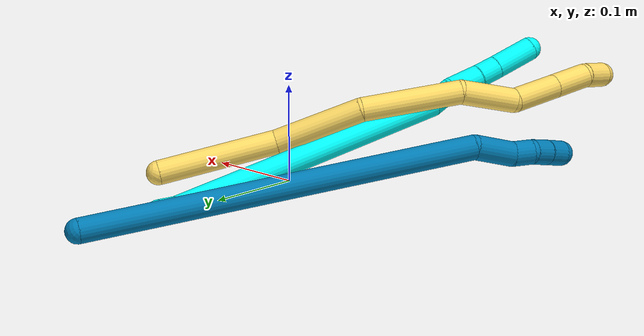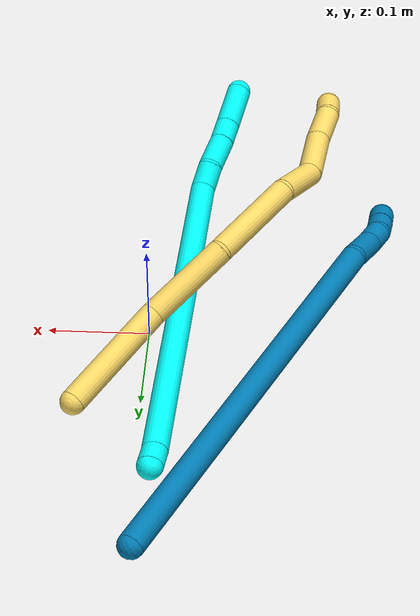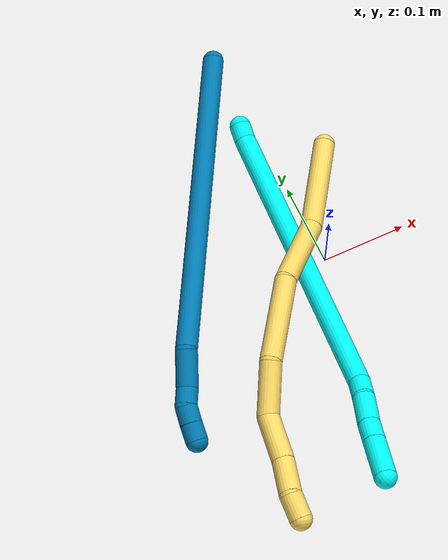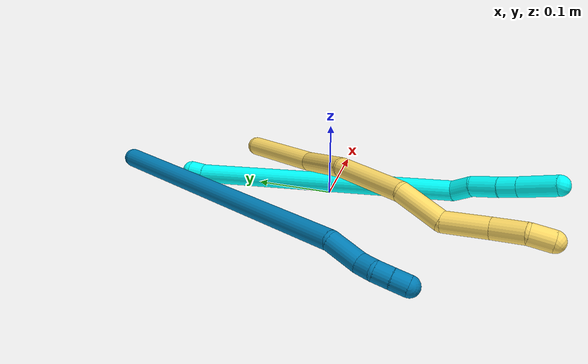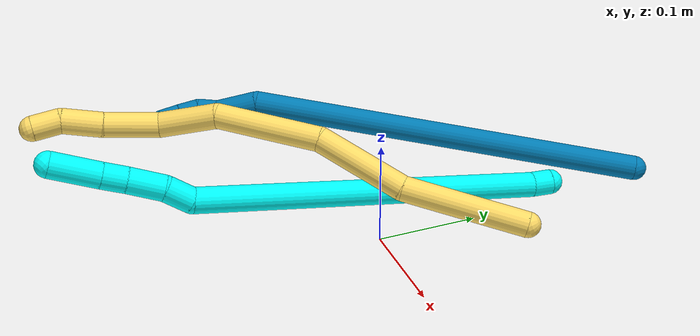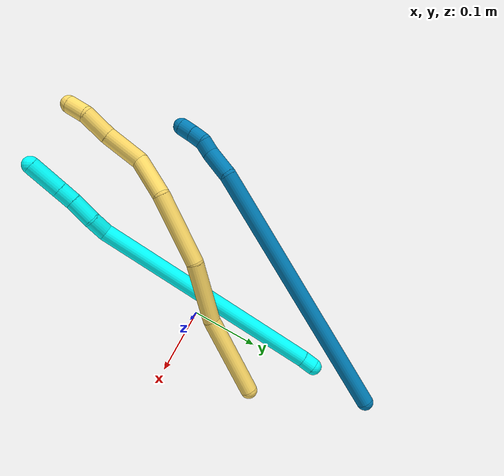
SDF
<sdf version="1.7">
 <world name="default">
  <model name="3">
   <static>0</static>
   <link name="3">
    <collision name="collision-cylinder-e_1_1_4">
     <pose>-0.002943 -0.005253 -0.008058 2.56393 -0.296863 -0.932469</pose>
     <geometry><cylinder><radius>0.0125</radius><length>0.020118</length></cylinder></geometry>
     <surface>
      <friction><ode><mu>1.16</mu><mu2>1.16</mu2><slip1>0</slip1><slip2>0</slip2></ode></friction>
      <contact><ode><kp>1e+06</kp><kd>1</kd><max_vel>0</max_vel><min_depth>0.001</min_depth></ode></contact>
     </surface>
    </collision>
    <visual name="visual-cylinder-e_1_1_4">
     <pose>-0.002943 -0.005253 -0.008058 2.56393 -0.296863 -0.932469</pose>
     <geometry><cylinder><radius>0.0125</radius><length>0.020118</length></cylinder></geometry>
     <material><ambient>0.003922 1 0.996078 1</ambient></material>
    </visual>
    <collision name="collision-cylinder-e_2_4_5">
     <pose>-0.035007 -0.118541 -0.14848 2.45705 -0.168824 -0.466321</pose>
     <geometry><cylinder><radius>0.0125</radius><length>0.34664</length></cylinder></geometry>
     <surface>
      <friction><ode><mu>1.16</mu><mu2>1.16</mu2><slip1>0</slip1><slip2>0</slip2></ode></friction>
      <contact><ode><kp>1e+06</kp><kd>1</kd><max_vel>0</max_vel><min_depth>0.001</min_depth></ode></contact>
     </surface>
    </collision>
    <visual name="visual-cylinder-e_2_4_5">
     <pose>-0.035007 -0.118541 -0.14848 2.45705 -0.168824 -0.466321</pose>
     <geometry><cylinder><radius>0.0125</radius><length>0.34664</length></cylinder></geometry>
     <material><ambient>0.003922 1 0.996078 1</ambient></material>
    </visual>
    <collision name="collision-cylinder-e_3_5_6">
     <pose>-0.06582 -0.238932 -0.286317 1.98786 -0.124471 -0.190954</pose>
     <geometry><cylinder><radius>0.0125</radius><length>0.027238</length></cylinder></geometry>
     <surface>
      <friction><ode><mu>1.16</mu><mu2>1.16</mu2><slip1>0</slip1><slip2>0</slip2></ode></friction>
      <contact><ode><kp>1e+06</kp><kd>1</kd><max_vel>0</max_vel><min_depth>0.001</min_depth></ode></contact>
     </surface>
    </collision>
    <visual name="visual-cylinder-e_3_5_6">
     <pose>-0.06582 -0.238932 -0.286317 1.98786 -0.124471 -0.190954</pose>
     <geometry><cylinder><radius>0.0125</radius><length>0.027238</length></cylinder></geometry>
     <material><ambient>0.003922 1 0.996078 1</ambient></material>
    </visual>
    <collision name="collision-cylinder-e_4_6_7">
     <pose>-0.072473 -0.264946 -0.301547 2.19103 -0.287503 -0.548372</pose>
     <geometry><cylinder><radius>0.0125</radius><length>0.035006</length></cylinder></geometry>
     <surface>
      <friction><ode><mu>1.16</mu><mu2>1.16</mu2><slip1>0</slip1><slip2>0</slip2></ode></friction>
      <contact><ode><kp>1e+06</kp><kd>1</kd><max_vel>0</max_vel><min_depth>0.001</min_depth></ode></contact>
     </surface>
    </collision>
    <visual name="visual-cylinder-e_4_6_7">
     <pose>-0.072473 -0.264946 -0.301547 2.19103 -0.287503 -0.548372</pose>
     <geometry><cylinder><radius>0.0125</radius><length>0.035006</length></cylinder></geometry>
     <material><ambient>0.003922 1 0.996078 1</ambient></material>
    </visual>
    <collision name="collision-cylinder-e_5_7_8">
     <pose>-0.079938 -0.287594 -0.318296 2.23191 -0.216197 -0.436741</pose>
     <geometry><cylinder><radius>0.0125</radius><length>0.023322</length></cylinder></geometry>
     <surface>
      <friction><ode><mu>1.16</mu><mu2>1.16</mu2><slip1>0</slip1><slip2>0</slip2></ode></friction>
      <contact><ode><kp>1e+06</kp><kd>1</kd><max_vel>0</max_vel><min_depth>0.001</min_depth></ode></contact>
     </surface>
    </collision>
    <visual name="visual-cylinder-e_5_7_8">
     <pose>-0.079938 -0.287594 -0.318296 2.23191 -0.216197 -0.436741</pose>
     <geometry><cylinder><radius>0.0125</radius><length>0.023322</length></cylinder></geometry>
     <material><ambient>0.003922 1 0.996078 1</ambient></material>
    </visual>
    <collision name="collision-cylinder-e_6_8_2">
     <pose>-0.087253 -0.315346 -0.339184 2.20823 -0.203319 -0.399569</pose>
     <geometry><cylinder><radius>0.0125</radius><length>0.047676</length></cylinder></geometry>
     <surface>
      <friction><ode><mu>1.16</mu><mu2>1.16</mu2><slip1>0</slip1><slip2>0</slip2></ode></friction>
      <contact><ode><kp>1e+06</kp><kd>1</kd><max_vel>0</max_vel><min_depth>0.001</min_depth></ode></contact>
     </surface>
    </collision>
    <visual name="visual-cylinder-e_6_8_2">
     <pose>-0.087253 -0.315346 -0.339184 2.20823 -0.203319 -0.399569</pose>
     <geometry><cylinder><radius>0.0125</radius><length>0.047676</length></cylinder></geometry>
     <material><ambient>0.003922 1 0.996078 1</ambient></material>
    </visual>
    <collision name="collision-sphere-2">
     <pose>-0.092066 -0.334108 -0.353078 0 -0 0</pose>
     <geometry><sphere><radius>0.0125</radius></sphere></geometry>
     <surface>
      <friction><ode><mu>1.16</mu><mu2>1.16</mu2><slip1>0</slip1><slip2>0</slip2></ode></friction>
      <contact><ode><kp>1e+06</kp><kd>1</kd><max_vel>0</max_vel><min_depth>0.001</min_depth></ode></contact>
     </surface>
    </collision>
    <visual name="visual-sphere-2">
     <pose>-0.092066 -0.334108 -0.353078 0 -0 0</pose>
     <geometry><sphere><radius>0.0125</radius></sphere></geometry>
     <material><ambient>0.003922 1 0.996078 1</ambient></material>
    </visual>
    <collision name="collision-sphere-4">
     <pose>-0.005885 -0.010505 -0.016117 0 -0 0</pose>
     <geometry><sphere><radius>0.0125</radius></sphere></geometry>
     <surface>
      <friction><ode><mu>1.16</mu><mu2>1.16</mu2><slip1>0</slip1><slip2>0</slip2></ode></friction>
      <contact><ode><kp>1e+06</kp><kd>1</kd><max_vel>0</max_vel><min_depth>0.001</min_depth></ode></contact>
     </surface>
    </collision>
    <visual name="visual-sphere-4">
     <pose>-0.005885 -0.010505 -0.016117 0 -0 0</pose>
     <geometry><sphere><radius>0.0125</radius></sphere></geometry>
     <material><ambient>0.003922 1 0.996078 1</ambient></material>
    </visual>
    <collision name="collision-sphere-1">
     <geometry><sphere><radius>0.0125</radius></sphere></geometry>
     <surface>
      <friction><ode><mu>1.16</mu><mu2>1.16</mu2><slip1>0</slip1><slip2>0</slip2></ode></friction>
      <contact><ode><kp>1e+06</kp><kd>1</kd><max_vel>0</max_vel><min_depth>0.001</min_depth></ode></contact>
     </surface>
    </collision>
    <visual name="visual-sphere-1">
     <geometry><sphere><radius>0.0125</radius></sphere></geometry>
     <material><ambient>0.003922 1 0.996078 1</ambient></material>
    </visual>
    <collision name="collision-sphere-8">
     <pose>-0.082439 -0.296584 -0.325289 0 -0 0</pose>
     <geometry><sphere><radius>0.0125</radius></sphere></geometry>
     <surface>
      <friction><ode><mu>1.16</mu><mu2>1.16</mu2><slip1>0</slip1><slip2>0</slip2></ode></friction>
      <contact><ode><kp>1e+06</kp><kd>1</kd><max_vel>0</max_vel><min_depth>0.001</min_depth></ode></contact>
     </surface>
    </collision>
    <visual name="visual-sphere-8">
     <pose>-0.082439 -0.296584 -0.325289 0 -0 0</pose>
     <geometry><sphere><radius>0.0125</radius></sphere></geometry>
     <material><ambient>0.003922 1 0.996078 1</ambient></material>
    </visual>
    <collision name="collision-sphere-5">
     <pose>-0.064129 -0.226577 -0.280843 0 -0 0</pose>
     <geometry><sphere><radius>0.0125</radius></sphere></geometry>
     <surface>
      <friction><ode><mu>1.16</mu><mu2>1.16</mu2><slip1>0</slip1><slip2>0</slip2></ode></friction>
      <contact><ode><kp>1e+06</kp><kd>1</kd><max_vel>0</max_vel><min_depth>0.001</min_depth></ode></contact>
     </surface>
    </collision>
    <visual name="visual-sphere-5">
     <pose>-0.064129 -0.226577 -0.280843 0 -0 0</pose>
     <geometry><sphere><radius>0.0125</radius></sphere></geometry>
     <material><ambient>0.003922 1 0.996078 1</ambient></material>
    </visual>
    <collision name="collision-sphere-6">
     <pose>-0.06751 -0.251287 -0.291791 0 -0 0</pose>
     <geometry><sphere><radius>0.0125</radius></sphere></geometry>
     <surface>
      <friction><ode><mu>1.16</mu><mu2>1.16</mu2><slip1>0</slip1><slip2>0</slip2></ode></friction>
      <contact><ode><kp>1e+06</kp><kd>1</kd><max_vel>0</max_vel><min_depth>0.001</min_depth></ode></contact>
     </surface>
    </collision>
    <visual name="visual-sphere-6">
     <pose>-0.06751 -0.251287 -0.291791 0 -0 0</pose>
     <geometry><sphere><radius>0.0125</radius></sphere></geometry>
     <material><ambient>0.003922 1 0.996078 1</ambient></material>
    </visual>
    <collision name="collision-sphere-7">
     <pose>-0.077436 -0.278604 -0.311302 0 -0 0</pose>
     <geometry><sphere><radius>0.0125</radius></sphere></geometry>
     <surface>
      <friction><ode><mu>1.16</mu><mu2>1.16</mu2><slip1>0</slip1><slip2>0</slip2></ode></friction>
      <contact><ode><kp>1e+06</kp><kd>1</kd><max_vel>0</max_vel><min_depth>0.001</min_depth></ode></contact>
     </surface>
    </collision>
    <visual name="visual-sphere-7">
     <pose>-0.077436 -0.278604 -0.311302 0 -0 0</pose>
     <geometry><sphere><radius>0.0125</radius></sphere></geometry>
     <material><ambient>0.003922 1 0.996078 1</ambient></material>
    </visual>
    <inertial>
     <pose>-0.045096 -0.157442 -0.18716 0 -0 0</pose>
     <mass>0.5</mass>
     <inertia>
      <ixx>0.001527</ixx>
      <ixy>0</ixy>
      <ixz>0</ixz>
      <iyy>-0.003834</iyy>
      <iyz>0</iyz>
      <izz>0.002752</izz>
     </inertia>
    </inertial>
   </link>
   <pose>-0.017079 0.194224 0.011927 -1.12344 -0.469654 0.190009</pose>
  </model>
  <model name="5">
   <static>0</static>
   <link name="5">
    <collision name="collision-cylinder-e_1_1_4">
     <pose>-0.011305 -0.034766 0.048992 0.617166 -0.186009 -0.059447</pose>
     <geometry><cylinder><radius>0.0125</radius><length>0.122257</length></cylinder></geometry>
     <surface>
      <friction><ode><mu>1.16</mu><mu2>1.16</mu2><slip1>0</slip1><slip2>0</slip2></ode></friction>
      <contact><ode><kp>1e+06</kp><kd>1</kd><max_vel>0</max_vel><min_depth>0.001</min_depth></ode></contact>
     </surface>
    </collision>
    <visual name="visual-cylinder-e_1_1_4">
     <pose>-0.011305 -0.034766 0.048992 0.617166 -0.186009 -0.059447</pose>
     <geometry><cylinder><radius>0.0125</radius><length>0.122257</length></cylinder></geometry>
     <material><ambient>1 0.858824 0.4 1</ambient></material>
    </visual>
    <collision name="collision-cylinder-e_2_4_5">
     <pose>-0.027818 -0.104745 0.127252 0.877313 -0.113263 -0.05318</pose>
     <geometry><cylinder><radius>0.0125</radius><length>0.092167</length></cylinder></geometry>
     <surface>
      <friction><ode><mu>1.16</mu><mu2>1.16</mu2><slip1>0</slip1><slip2>0</slip2></ode></friction>
      <contact><ode><kp>1e+06</kp><kd>1</kd><max_vel>0</max_vel><min_depth>0.001</min_depth></ode></contact>
     </surface>
    </collision>
    <visual name="visual-cylinder-e_2_4_5">
     <pose>-0.027818 -0.104745 0.127252 0.877313 -0.113263 -0.05318</pose>
     <geometry><cylinder><radius>0.0125</radius><length>0.092167</length></cylinder></geometry>
     <material><ambient>1 0.858824 0.4 1</ambient></material>
    </visual>
    <collision name="collision-cylinder-e_3_5_6">
     <pose>-0.039547 -0.167563 0.199791 0.567885 -0.126369 -0.036923</pose>
     <geometry><cylinder><radius>0.0125</radius><length>0.103477</length></cylinder></geometry>
     <surface>
      <friction><ode><mu>1.16</mu><mu2>1.16</mu2><slip1>0</slip1><slip2>0</slip2></ode></friction>
      <contact><ode><kp>1e+06</kp><kd>1</kd><max_vel>0</max_vel><min_depth>0.001</min_depth></ode></contact>
     </surface>
    </collision>
    <visual name="visual-cylinder-e_3_5_6">
     <pose>-0.039547 -0.167563 0.199791 0.567885 -0.126369 -0.036923</pose>
     <geometry><cylinder><radius>0.0125</radius><length>0.103477</length></cylinder></geometry>
     <material><ambient>1 0.858824 0.4 1</ambient></material>
    </visual>
    <collision name="collision-cylinder-e_4_6_7">
     <pose>-0.046279 -0.201408 0.27229 0.210317 -0.007059 -0.000745</pose>
     <geometry><cylinder><radius>0.0125</radius><length>0.059777</length></cylinder></geometry>
     <surface>
      <friction><ode><mu>1.16</mu><mu2>1.16</mu2><slip1>0</slip1><slip2>0</slip2></ode></friction>
      <contact><ode><kp>1e+06</kp><kd>1</kd><max_vel>0</max_vel><min_depth>0.001</min_depth></ode></contact>
     </surface>
    </collision>
    <visual name="visual-cylinder-e_4_6_7">
     <pose>-0.046279 -0.201408 0.27229 0.210317 -0.007059 -0.000745</pose>
     <geometry><cylinder><radius>0.0125</radius><length>0.059777</length></cylinder></geometry>
     <material><ambient>1 0.858824 0.4 1</ambient></material>
    </visual>
    <collision name="collision-cylinder-e_5_7_8">
     <pose>-0.059388 -0.214279 0.324686 0.278757 -0.491419 -0.070333</pose>
     <geometry><cylinder><radius>0.0125</radius><length>0.054664</length></cylinder></geometry>
     <surface>
      <friction><ode><mu>1.16</mu><mu2>1.16</mu2><slip1>0</slip1><slip2>0</slip2></ode></friction>
      <contact><ode><kp>1e+06</kp><kd>1</kd><max_vel>0</max_vel><min_depth>0.001</min_depth></ode></contact>
     </surface>
    </collision>
    <visual name="visual-cylinder-e_5_7_8">
     <pose>-0.059388 -0.214279 0.324686 0.278757 -0.491419 -0.070333</pose>
     <geometry><cylinder><radius>0.0125</radius><length>0.054664</length></cylinder></geometry>
     <material><ambient>1 0.858824 0.4 1</ambient></material>
    </visual>
    <collision name="collision-cylinder-e_6_8_9">
     <pose>-0.080701 -0.227865 0.364566 0.394385 -0.435179 -0.088285</pose>
     <geometry><cylinder><radius>0.0125</radius><length>0.039926</length></cylinder></geometry>
     <surface>
      <friction><ode><mu>1.16</mu><mu2>1.16</mu2><slip1>0</slip1><slip2>0</slip2></ode></friction>
      <contact><ode><kp>1e+06</kp><kd>1</kd><max_vel>0</max_vel><min_depth>0.001</min_depth></ode></contact>
     </surface>
    </collision>
    <visual name="visual-cylinder-e_6_8_9">
     <pose>-0.080701 -0.227865 0.364566 0.394385 -0.435179 -0.088285</pose>
     <geometry><cylinder><radius>0.0125</radius><length>0.039926</length></cylinder></geometry>
     <material><ambient>1 0.858824 0.4 1</ambient></material>
    </visual>
    <collision name="collision-cylinder-e_7_9_2">
     <pose>-0.094535 -0.234661 0.394042 -0.012503 -0.40144 0.002544</pose>
     <geometry><cylinder><radius>0.0125</radius><length>0.027732</length></cylinder></geometry>
     <surface>
      <friction><ode><mu>1.16</mu><mu2>1.16</mu2><slip1>0</slip1><slip2>0</slip2></ode></friction>
      <contact><ode><kp>1e+06</kp><kd>1</kd><max_vel>0</max_vel><min_depth>0.001</min_depth></ode></contact>
     </surface>
    </collision>
    <visual name="visual-cylinder-e_7_9_2">
     <pose>-0.094535 -0.234661 0.394042 -0.012503 -0.40144 0.002544</pose>
     <geometry><cylinder><radius>0.0125</radius><length>0.027732</length></cylinder></geometry>
     <material><ambient>1 0.858824 0.4 1</ambient></material>
    </visual>
    <collision name="collision-sphere-2">
     <pose>-0.099953 -0.234502 0.406804 0 -0 0</pose>
     <geometry><sphere><radius>0.0125</radius></sphere></geometry>
     <surface>
      <friction><ode><mu>1.16</mu><mu2>1.16</mu2><slip1>0</slip1><slip2>0</slip2></ode></friction>
      <contact><ode><kp>1e+06</kp><kd>1</kd><max_vel>0</max_vel><min_depth>0.001</min_depth></ode></contact>
     </surface>
    </collision>
    <visual name="visual-sphere-2">
     <pose>-0.099953 -0.234502 0.406804 0 -0 0</pose>
     <geometry><sphere><radius>0.0125</radius></sphere></geometry>
     <material><ambient>1 0.858824 0.4 1</ambient></material>
    </visual>
    <collision name="collision-sphere-9">
     <pose>-0.089117 -0.234821 0.381279 0 -0 0</pose>
     <geometry><sphere><radius>0.0125</radius></sphere></geometry>
     <surface>
      <friction><ode><mu>1.16</mu><mu2>1.16</mu2><slip1>0</slip1><slip2>0</slip2></ode></friction>
      <contact><ode><kp>1e+06</kp><kd>1</kd><max_vel>0</max_vel><min_depth>0.001</min_depth></ode></contact>
     </surface>
    </collision>
    <visual name="visual-sphere-9">
     <pose>-0.089117 -0.234821 0.381279 0 -0 0</pose>
     <geometry><sphere><radius>0.0125</radius></sphere></geometry>
     <material><ambient>1 0.858824 0.4 1</ambient></material>
    </visual>
    <collision name="collision-sphere-4">
     <pose>-0.02261 -0.069533 0.097983 0 -0 0</pose>
     <geometry><sphere><radius>0.0125</radius></sphere></geometry>
     <surface>
      <friction><ode><mu>1.16</mu><mu2>1.16</mu2><slip1>0</slip1><slip2>0</slip2></ode></friction>
      <contact><ode><kp>1e+06</kp><kd>1</kd><max_vel>0</max_vel><min_depth>0.001</min_depth></ode></contact>
     </surface>
    </collision>
    <visual name="visual-sphere-4">
     <pose>-0.02261 -0.069533 0.097983 0 -0 0</pose>
     <geometry><sphere><radius>0.0125</radius></sphere></geometry>
     <material><ambient>1 0.858824 0.4 1</ambient></material>
    </visual>
    <collision name="collision-sphere-1">
     <geometry><sphere><radius>0.0125</radius></sphere></geometry>
     <surface>
      <friction><ode><mu>1.16</mu><mu2>1.16</mu2><slip1>0</slip1><slip2>0</slip2></ode></friction>
      <contact><ode><kp>1e+06</kp><kd>1</kd><max_vel>0</max_vel><min_depth>0.001</min_depth></ode></contact>
     </surface>
    </collision>
    <visual name="visual-sphere-1">
     <geometry><sphere><radius>0.0125</radius></sphere></geometry>
     <material><ambient>1 0.858824 0.4 1</ambient></material>
    </visual>
    <collision name="collision-sphere-8">
     <pose>-0.072285 -0.220909 0.347854 0 -0 0</pose>
     <geometry><sphere><radius>0.0125</radius></sphere></geometry>
     <surface>
      <friction><ode><mu>1.16</mu><mu2>1.16</mu2><slip1>0</slip1><slip2>0</slip2></ode></friction>
      <contact><ode><kp>1e+06</kp><kd>1</kd><max_vel>0</max_vel><min_depth>0.001</min_depth></ode></contact>
     </surface>
    </collision>
    <visual name="visual-sphere-8">
     <pose>-0.072285 -0.220909 0.347854 0 -0 0</pose>
     <geometry><sphere><radius>0.0125</radius></sphere></geometry>
     <material><ambient>1 0.858824 0.4 1</ambient></material>
    </visual>
    <collision name="collision-sphere-5">
     <pose>-0.033027 -0.139957 0.156521 0 -0 0</pose>
     <geometry><sphere><radius>0.0125</radius></sphere></geometry>
     <surface>
      <friction><ode><mu>1.16</mu><mu2>1.16</mu2><slip1>0</slip1><slip2>0</slip2></ode></friction>
      <contact><ode><kp>1e+06</kp><kd>1</kd><max_vel>0</max_vel><min_depth>0.001</min_depth></ode></contact>
     </surface>
    </collision>
    <visual name="visual-sphere-5">
     <pose>-0.033027 -0.139957 0.156521 0 -0 0</pose>
     <geometry><sphere><radius>0.0125</radius></sphere></geometry>
     <material><ambient>1 0.858824 0.4 1</ambient></material>
    </visual>
    <collision name="collision-sphere-6">
     <pose>-0.046068 -0.195169 0.243061 0 -0 0</pose>
     <geometry><sphere><radius>0.0125</radius></sphere></geometry>
     <surface>
      <friction><ode><mu>1.16</mu><mu2>1.16</mu2><slip1>0</slip1><slip2>0</slip2></ode></friction>
      <contact><ode><kp>1e+06</kp><kd>1</kd><max_vel>0</max_vel><min_depth>0.001</min_depth></ode></contact>
     </surface>
    </collision>
    <visual name="visual-sphere-6">
     <pose>-0.046068 -0.195169 0.243061 0 -0 0</pose>
     <geometry><sphere><radius>0.0125</radius></sphere></geometry>
     <material><ambient>1 0.858824 0.4 1</ambient></material>
    </visual>
    <collision name="collision-sphere-7">
     <pose>-0.04649 -0.207648 0.301519 0 -0 0</pose>
     <geometry><sphere><radius>0.0125</radius></sphere></geometry>
     <surface>
      <friction><ode><mu>1.16</mu><mu2>1.16</mu2><slip1>0</slip1><slip2>0</slip2></ode></friction>
      <contact><ode><kp>1e+06</kp><kd>1</kd><max_vel>0</max_vel><min_depth>0.001</min_depth></ode></contact>
     </surface>
    </collision>
    <visual name="visual-sphere-7">
     <pose>-0.04649 -0.207648 0.301519 0 -0 0</pose>
     <geometry><sphere><radius>0.0125</radius></sphere></geometry>
     <material><ambient>1 0.858824 0.4 1</ambient></material>
    </visual>
    <inertial>
     <pose>-0.03979 -0.141203 0.195801 0 -0 0</pose>
     <mass>0.5</mass>
     <inertia>
      <ixx>0.000335</ixx>
      <ixy>0</ixy>
      <ixz>0</ixz>
      <iyy>0.000263</iyy>
      <iyz>0</iyz>
      <izz>0.000296</izz>
     </inertia>
    </inertial>
   </link>
   <pose>0.059518 0.125428 0.022581 -2.07185 0.633145 2.47034</pose>
  </model>
  <model name="9">
   <static>0</static>
   <link name="9">
    <collision name="collision-cylinder-e_1_1_4">
     <pose>-0.140932 -0.089847 0.106564 0.700494 -0.790915 -0.302663</pose>
     <geometry><cylinder><radius>0.0125</radius><length>0.396436</length></cylinder></geometry>
     <surface>
      <friction><ode><mu>1.16</mu><mu2>1.16</mu2><slip1>0</slip1><slip2>0</slip2></ode></friction>
      <contact><ode><kp>1e+06</kp><kd>1</kd><max_vel>0</max_vel><min_depth>0.001</min_depth></ode></contact>
     </surface>
    </collision>
    <visual name="visual-cylinder-e_1_1_4">
     <pose>-0.140932 -0.089847 0.106564 0.700494 -0.790915 -0.302663</pose>
     <geometry><cylinder><radius>0.0125</radius><length>0.396436</length></cylinder></geometry>
     <material><ambient>0 0.490196 0.709804 1</ambient></material>
    </visual>
    <collision name="collision-cylinder-e_2_4_5">
     <pose>-0.301662 -0.186317 0.218023 0.934273 -1.17659 -0.649122</pose>
     <geometry><cylinder><radius>0.0125</radius><length>0.042883</length></cylinder></geometry>
     <surface>
      <friction><ode><mu>1.16</mu><mu2>1.16</mu2><slip1>0</slip1><slip2>0</slip2></ode></friction>
      <contact><ode><kp>1e+06</kp><kd>1</kd><max_vel>0</max_vel><min_depth>0.001</min_depth></ode></contact>
     </surface>
    </collision>
    <visual name="visual-cylinder-e_2_4_5">
     <pose>-0.301662 -0.186317 0.218023 0.934273 -1.17659 -0.649122</pose>
     <geometry><cylinder><radius>0.0125</radius><length>0.042883</length></cylinder></geometry>
     <material><ambient>0 0.490196 0.709804 1</ambient></material>
    </visual>
    <collision name="collision-cylinder-e_3_5_6">
     <pose>-0.329466 -0.197204 0.227787 0.719271 -0.891003 -0.355296</pose>
     <geometry><cylinder><radius>0.0125</radius><length>0.020591</length></cylinder></geometry>
     <surface>
      <friction><ode><mu>1.16</mu><mu2>1.16</mu2><slip1>0</slip1><slip2>0</slip2></ode></friction>
      <contact><ode><kp>1e+06</kp><kd>1</kd><max_vel>0</max_vel><min_depth>0.001</min_depth></ode></contact>
     </surface>
    </collision>
    <visual name="visual-cylinder-e_3_5_6">
     <pose>-0.329466 -0.197204 0.227787 0.719271 -0.891003 -0.355296</pose>
     <geometry><cylinder><radius>0.0125</radius><length>0.020591</length></cylinder></geometry>
     <material><ambient>0 0.490196 0.709804 1</ambient></material>
    </visual>
    <collision name="collision-cylinder-e_4_6_7">
     <pose>-0.345948 -0.20671 0.23359 1.39442 -1.00985 -0.867082</pose>
     <geometry><cylinder><radius>0.0125</radius><length>0.02002</length></cylinder></geometry>
     <surface>
      <friction><ode><mu>1.16</mu><mu2>1.16</mu2><slip1>0</slip1><slip2>0</slip2></ode></friction>
      <contact><ode><kp>1e+06</kp><kd>1</kd><max_vel>0</max_vel><min_depth>0.001</min_depth></ode></contact>
     </surface>
    </collision>
    <visual name="visual-cylinder-e_4_6_7">
     <pose>-0.345948 -0.20671 0.23359 1.39442 -1.00985 -0.867082</pose>
     <geometry><cylinder><radius>0.0125</radius><length>0.02002</length></cylinder></geometry>
     <material><ambient>0 0.490196 0.709804 1</ambient></material>
    </visual>
    <collision name="collision-cylinder-e_5_7_2">
     <pose>-0.362922 -0.217274 0.234951 1.4907 -1.0099 -0.943484</pose>
     <geometry><cylinder><radius>0.0125</radius><length>0.020071</length></cylinder></geometry>
     <surface>
      <friction><ode><mu>1.16</mu><mu2>1.16</mu2><slip1>0</slip1><slip2>0</slip2></ode></friction>
      <contact><ode><kp>1e+06</kp><kd>1</kd><max_vel>0</max_vel><min_depth>0.001</min_depth></ode></contact>
     </surface>
    </collision>
    <visual name="visual-cylinder-e_5_7_2">
     <pose>-0.362922 -0.217274 0.234951 1.4907 -1.0099 -0.943484</pose>
     <geometry><cylinder><radius>0.0125</radius><length>0.020071</length></cylinder></geometry>
     <material><ambient>0 0.490196 0.709804 1</ambient></material>
    </visual>
    <collision name="collision-sphere-2">
     <pose>-0.371419 -0.222595 0.235378 0 -0 0</pose>
     <geometry><sphere><radius>0.0125</radius></sphere></geometry>
     <surface>
      <friction><ode><mu>1.16</mu><mu2>1.16</mu2><slip1>0</slip1><slip2>0</slip2></ode></friction>
      <contact><ode><kp>1e+06</kp><kd>1</kd><max_vel>0</max_vel><min_depth>0.001</min_depth></ode></contact>
     </surface>
    </collision>
    <visual name="visual-sphere-2">
     <pose>-0.371419 -0.222595 0.235378 0 -0 0</pose>
     <geometry><sphere><radius>0.0125</radius></sphere></geometry>
     <material><ambient>0 0.490196 0.709804 1</ambient></material>
    </visual>
    <collision name="collision-sphere-7">
     <pose>-0.354424 -0.211953 0.234524 0 -0 0</pose>
     <geometry><sphere><radius>0.0125</radius></sphere></geometry>
     <surface>
      <friction><ode><mu>1.16</mu><mu2>1.16</mu2><slip1>0</slip1><slip2>0</slip2></ode></friction>
      <contact><ode><kp>1e+06</kp><kd>1</kd><max_vel>0</max_vel><min_depth>0.001</min_depth></ode></contact>
     </surface>
    </collision>
    <visual name="visual-sphere-7">
     <pose>-0.354424 -0.211953 0.234524 0 -0 0</pose>
     <geometry><sphere><radius>0.0125</radius></sphere></geometry>
     <material><ambient>0 0.490196 0.709804 1</ambient></material>
    </visual>
    <collision name="collision-sphere-6">
     <pose>-0.337472 -0.201468 0.232655 0 -0 0</pose>
     <geometry><sphere><radius>0.0125</radius></sphere></geometry>
     <surface>
      <friction><ode><mu>1.16</mu><mu2>1.16</mu2><slip1>0</slip1><slip2>0</slip2></ode></friction>
      <contact><ode><kp>1e+06</kp><kd>1</kd><max_vel>0</max_vel><min_depth>0.001</min_depth></ode></contact>
     </surface>
    </collision>
    <visual name="visual-sphere-6">
     <pose>-0.337472 -0.201468 0.232655 0 -0 0</pose>
     <geometry><sphere><radius>0.0125</radius></sphere></geometry>
     <material><ambient>0 0.490196 0.709804 1</ambient></material>
    </visual>
    <collision name="collision-sphere-5">
     <pose>-0.321459 -0.19294 0.222918 0 -0 0</pose>
     <geometry><sphere><radius>0.0125</radius></sphere></geometry>
     <surface>
      <friction><ode><mu>1.16</mu><mu2>1.16</mu2><slip1>0</slip1><slip2>0</slip2></ode></friction>
      <contact><ode><kp>1e+06</kp><kd>1</kd><max_vel>0</max_vel><min_depth>0.001</min_depth></ode></contact>
     </surface>
    </collision>
    <visual name="visual-sphere-5">
     <pose>-0.321459 -0.19294 0.222918 0 -0 0</pose>
     <geometry><sphere><radius>0.0125</radius></sphere></geometry>
     <material><ambient>0 0.490196 0.709804 1</ambient></material>
    </visual>
    <collision name="collision-sphere-1">
     <geometry><sphere><radius>0.0125</radius></sphere></geometry>
     <surface>
      <friction><ode><mu>1.16</mu><mu2>1.16</mu2><slip1>0</slip1><slip2>0</slip2></ode></friction>
      <contact><ode><kp>1e+06</kp><kd>1</kd><max_vel>0</max_vel><min_depth>0.001</min_depth></ode></contact>
     </surface>
    </collision>
    <visual name="visual-sphere-1">
     <geometry><sphere><radius>0.0125</radius></sphere></geometry>
     <material><ambient>0 0.490196 0.709804 1</ambient></material>
    </visual>
    <collision name="collision-sphere-4">
     <pose>-0.281865 -0.179695 0.213128 0 -0 0</pose>
     <geometry><sphere><radius>0.0125</radius></sphere></geometry>
     <surface>
      <friction><ode><mu>1.16</mu><mu2>1.16</mu2><slip1>0</slip1><slip2>0</slip2></ode></friction>
      <contact><ode><kp>1e+06</kp><kd>1</kd><max_vel>0</max_vel><min_depth>0.001</min_depth></ode></contact>
     </surface>
    </collision>
    <visual name="visual-sphere-4">
     <pose>-0.281865 -0.179695 0.213128 0 -0 0</pose>
     <geometry><sphere><radius>0.0125</radius></sphere></geometry>
     <material><ambient>0 0.490196 0.709804 1</ambient></material>
    </visual>
    <inertial>
     <pose>-0.179601 -0.112337 0.131355 0 -0 0</pose>
     <mass>0.5</mass>
     <inertia>
      <ixx>0.002376</ixx>
      <ixy>0</ixy>
      <ixz>0</ixz>
      <iyy>0.00341</iyy>
      <iyz>0</iyz>
      <izz>0.006097</izz>
     </inertia>
    </inertial>
   </link>
   <pose>-0.008859 0.288503 0.012386 -0.716479 -0.655702 1.07528</pose>
  </model>
 </world>
</sdf>
